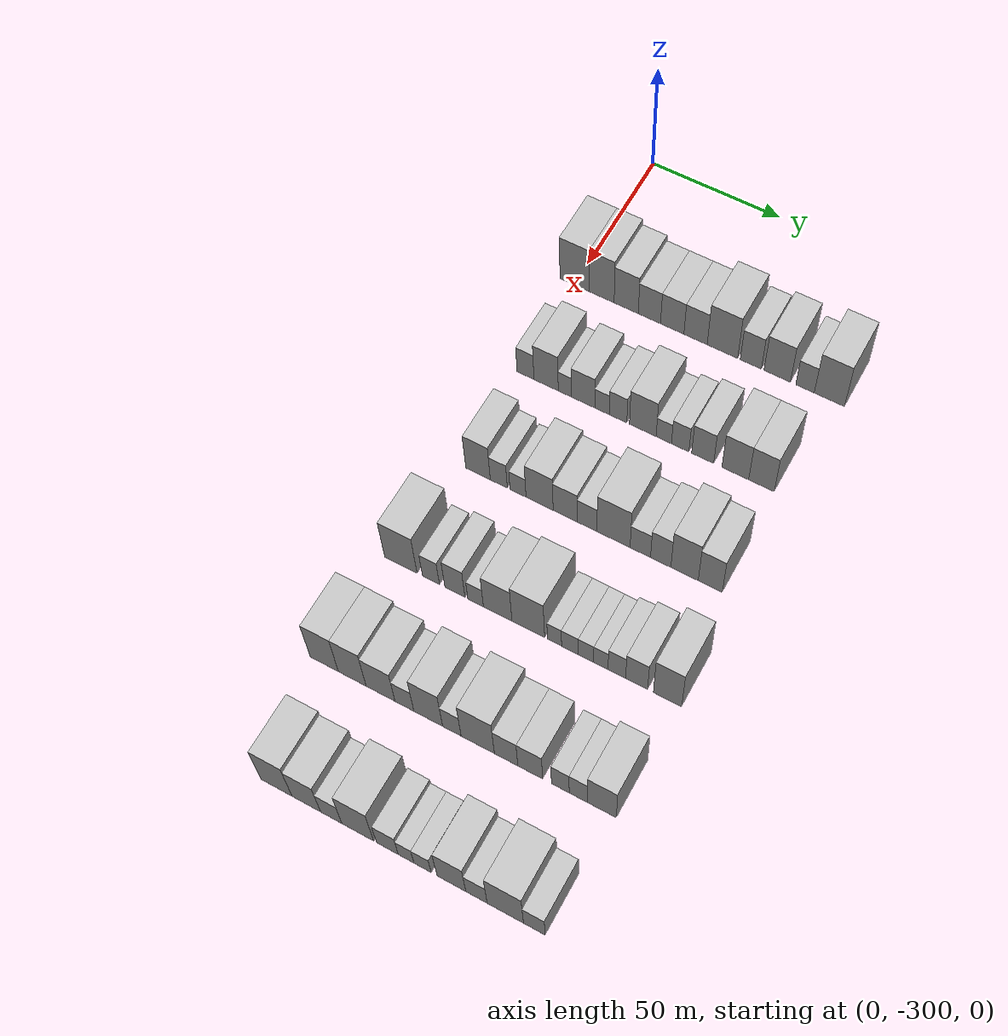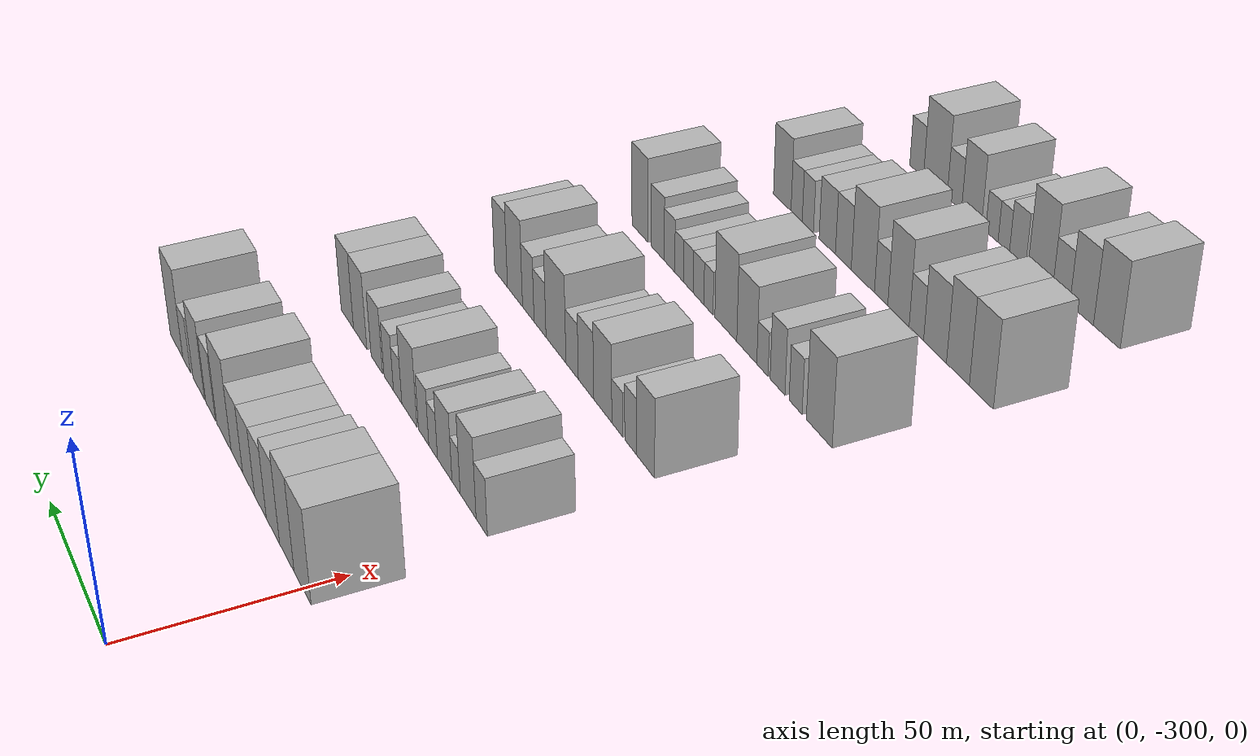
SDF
<sdf version="1.6">
 <world name="default">
  <model name="building_38">
   <static>1</static>
   <pose>50.0000 -299.7955 0 0.000000 0.000000 0.000000</pose>
   <link name="link">
    <pose>0 0 12.00 0 0 0</pose>
    <collision name="collision"><geometry><box><size>20.0000 11.3112 24.0000</size></box></geometry></collision>
    <visual name="visual">
     <cast_shadows>0</cast_shadows>
     <geometry><box><size>20.0000 11.3112 24.0000</size></box></geometry>
     <material>
      <script>
       <uri>model://HANNAS_wall/materials/scripts</uri>
       <uri>model://HANNAS_wall/materials/textures</uri>
       <name>vrc/HANNAS_wall</name>
      </script>
     </material>
    </visual>
   </link>
  </model>
  <model name="building_39">
   <static>1</static>
   <pose>50.0000 -289.2028 0 0.000000 0.000000 0.000000</pose>
   <link name="link">
    <pose>0 0 12.00 0 0 0</pose>
    <collision name="collision"><geometry><box><size>20.0000 9.8742 24.0000</size></box></geometry></collision>
    <visual name="visual">
     <cast_shadows>0</cast_shadows>
     <geometry><box><size>20.0000 9.8742 24.0000</size></box></geometry>
     <material>
      <script>
       <uri>model://HANNAS_wall/materials/scripts</uri>
       <uri>model://HANNAS_wall/materials/textures</uri>
       <name>vrc/HANNAS_wall</name>
      </script>
     </material>
    </visual>
   </link>
  </model>
  <model name="building_40">
   <static>1</static>
   <pose>50.0000 -279.5872 0 0.000000 0.000000 0.000000</pose>
   <link name="link">
    <pose>0 0 10.50 0 0 0</pose>
    <collision name="collision"><geometry><box><size>20.0000 9.3571 21.0000</size></box></geometry></collision>
    <visual name="visual">
     <cast_shadows>0</cast_shadows>
     <geometry><box><size>20.0000 9.3571 21.0000</size></box></geometry>
     <material>
      <script>
       <uri>model://HANNAS_wall/materials/scripts</uri>
       <uri>model://HANNAS_wall/materials/textures</uri>
       <name>vrc/HANNAS_wall</name>
      </script>
     </material>
    </visual>
   </link>
  </model>
  <model name="building_41">
   <static>1</static>
   <pose>50.0000 -270.6344 0 0.000000 0.000000 0.000000</pose>
   <link name="link">
    <pose>0 0 9.00 0 0 0</pose>
    <collision name="collision"><geometry><box><size>20.0000 8.5484 18.0000</size></box></geometry></collision>
    <visual name="visual">
     <cast_shadows>0</cast_shadows>
     <geometry><box><size>20.0000 8.5484 18.0000</size></box></geometry>
     <material>
      <script>
       <uri>model://HANNAS_wall/materials/scripts</uri>
       <uri>model://HANNAS_wall/materials/textures</uri>
       <name>vrc/HANNAS_wall</name>
      </script>
     </material>
    </visual>
   </link>
  </model>
  <model name="building_42">
   <static>1</static>
   <pose>50.0000 -261.8857 0 0.000000 0.000000 0.000000</pose>
   <link name="link">
    <pose>0 0 9.00 0 0 0</pose>
    <collision name="collision"><geometry><box><size>20.0000 8.9490 18.0000</size></box></geometry></collision>
    <visual name="visual">
     <cast_shadows>0</cast_shadows>
     <geometry><box><size>20.0000 8.9490 18.0000</size></box></geometry>
     <material>
      <script>
       <uri>model://HANNAS_wall/materials/scripts</uri>
       <uri>model://HANNAS_wall/materials/textures</uri>
       <name>vrc/HANNAS_wall</name>
      </script>
     </material>
    </visual>
   </link>
  </model>
  <model name="building_43">
   <static>1</static>
   <pose>50.0000 -252.9878 0 0.000000 0.000000 0.000000</pose>
   <link name="link">
    <pose>0 0 9.00 0 0 0</pose>
    <collision name="collision"><geometry><box><size>20.0000 8.8469 18.0000</size></box></geometry></collision>
    <visual name="visual">
     <cast_shadows>0</cast_shadows>
     <geometry><box><size>20.0000 8.8469 18.0000</size></box></geometry>
     <material>
      <script>
       <uri>model://HANNAS_wall/materials/scripts</uri>
       <uri>model://HANNAS_wall/materials/textures</uri>
       <name>vrc/HANNAS_wall</name>
      </script>
     </material>
    </visual>
   </link>
  </model>
  <model name="building_44">
   <static>1</static>
   <pose>50.0000 -242.8386 0 0.000000 0.000000 0.000000</pose>
   <link name="link">
    <pose>0 0 12.00 0 0 0</pose>
    <collision name="collision"><geometry><box><size>20.0000 11.4516 24.0000</size></box></geometry></collision>
    <visual name="visual">
     <cast_shadows>0</cast_shadows>
     <geometry><box><size>20.0000 11.4516 24.0000</size></box></geometry>
     <material>
      <script>
       <uri>model://HANNAS_wall/materials/scripts</uri>
       <uri>model://HANNAS_wall/materials/textures</uri>
       <name>vrc/HANNAS_wall</name>
      </script>
     </material>
    </visual>
   </link>
  </model>
  <model name="building_45">
   <static>1</static>
   <pose>50.0000 -232.1709 0 0.000000 0.000000 0.000000</pose>
   <link name="link">
    <pose>0 0 9.00 0 0 0</pose>
    <collision name="collision"><geometry><box><size>20.0000 7.8837 18.0000</size></box></geometry></collision>
    <visual name="visual">
     <cast_shadows>0</cast_shadows>
     <geometry><box><size>20.0000 7.8837 18.0000</size></box></geometry>
     <material>
      <script>
       <uri>model://HANNAS_wall/materials/scripts</uri>
       <uri>model://HANNAS_wall/materials/textures</uri>
       <name>vrc/HANNAS_wall</name>
      </script>
     </material>
    </visual>
   </link>
  </model>
  <model name="building_46">
   <static>1</static>
   <pose>50.0000 -222.3349 0 0.000000 0.000000 0.000000</pose>
   <link name="link">
    <pose>0 0 10.50 0 0 0</pose>
    <collision name="collision"><geometry><box><size>20.0000 9.7882 21.0000</size></box></geometry></collision>
    <visual name="visual">
     <cast_shadows>0</cast_shadows>
     <geometry><box><size>20.0000 9.7882 21.0000</size></box></geometry>
     <material>
      <script>
       <uri>model://HANNAS_wall/materials/scripts</uri>
       <uri>model://HANNAS_wall/materials/textures</uri>
       <name>vrc/HANNAS_wall</name>
      </script>
     </material>
    </visual>
   </link>
  </model>
  <model name="building_47">
   <static>1</static>
   <pose>50.0000 -212.0535 0 0.000000 0.000000 0.000000</pose>
   <link name="link">
    <pose>0 0 7.50 0 0 0</pose>
    <collision name="collision"><geometry><box><size>20.0000 6.7747 15.0000</size></box></geometry></collision>
    <visual name="visual">
     <cast_shadows>0</cast_shadows>
     <geometry><box><size>20.0000 6.7747 15.0000</size></box></geometry>
     <material>
      <script>
       <uri>model://HANNAS_wall/materials/scripts</uri>
       <uri>model://HANNAS_wall/materials/textures</uri>
       <name>vrc/HANNAS_wall</name>
      </script>
     </material>
    </visual>
   </link>
  </model>
  <model name="building_48">
   <static>1</static>
   <pose>50.0000 -203.1275 0 0.000000 0.000000 0.000000</pose>
   <link name="link">
    <pose>0 0 12.00 0 0 0</pose>
    <collision name="collision"><geometry><box><size>20.0000 11.0774 24.0000</size></box></geometry></collision>
    <visual name="visual">
     <cast_shadows>0</cast_shadows>
     <geometry><box><size>20.0000 11.0774 24.0000</size></box></geometry>
     <material>
      <script>
       <uri>model://HANNAS_wall/materials/scripts</uri>
       <uri>model://HANNAS_wall/materials/textures</uri>
       <name>vrc/HANNAS_wall</name>
      </script>
     </material>
    </visual>
   </link>
  </model>
  <model name="building_171">
   <static>1</static>
   <pose>90.0000 -296.6397 0 0.000000 0.000000 0.000000</pose>
   <link name="link">
    <pose>0 0 7.50 0 0 0</pose>
    <collision name="collision"><geometry><box><size>20.0000 6.4886 15.0000</size></box></geometry></collision>
    <visual name="visual">
     <cast_shadows>0</cast_shadows>
     <geometry><box><size>20.0000 6.4886 15.0000</size></box></geometry>
     <material>
      <script>
       <uri>model://HANNAS_wall/materials/scripts</uri>
       <uri>model://HANNAS_wall/materials/textures</uri>
       <name>vrc/HANNAS_wall</name>
      </script>
     </material>
    </visual>
   </link>
  </model>
  <model name="building_172">
   <static>1</static>
   <pose>90.0000 -288.7477 0 0.000000 0.000000 0.000000</pose>
   <link name="link">
    <pose>0 0 10.50 0 0 0</pose>
    <collision name="collision"><geometry><box><size>20.0000 9.2954 21.0000</size></box></geometry></collision>
    <visual name="visual">
     <cast_shadows>0</cast_shadows>
     <geometry><box><size>20.0000 9.2954 21.0000</size></box></geometry>
     <material>
      <script>
       <uri>model://HANNAS_wall/materials/scripts</uri>
       <uri>model://HANNAS_wall/materials/textures</uri>
       <name>vrc/HANNAS_wall</name>
      </script>
     </material>
    </visual>
   </link>
  </model>
  <model name="building_173">
   <static>1</static>
   <pose>90.0000 -281.6334 0 0.000000 0.000000 0.000000</pose>
   <link name="link">
    <pose>0 0 6.00 0 0 0</pose>
    <collision name="collision"><geometry><box><size>20.0000 4.9332 12.0000</size></box></geometry></collision>
    <visual name="visual">
     <cast_shadows>0</cast_shadows>
     <geometry><box><size>20.0000 4.9332 12.0000</size></box></geometry>
     <material>
      <script>
       <uri>model://HANNAS_wall/materials/scripts</uri>
       <uri>model://HANNAS_wall/materials/textures</uri>
       <name>vrc/HANNAS_wall</name>
      </script>
     </material>
    </visual>
   </link>
  </model>
  <model name="building_174">
   <static>1</static>
   <pose>90.0000 -274.7191 0 0.000000 0.000000 0.000000</pose>
   <link name="link">
    <pose>0 0 9.00 0 0 0</pose>
    <collision name="collision"><geometry><box><size>20.0000 8.8953 18.0000</size></box></geometry></collision>
    <visual name="visual">
     <cast_shadows>0</cast_shadows>
     <geometry><box><size>20.0000 8.8953 18.0000</size></box></geometry>
     <material>
      <script>
       <uri>model://HANNAS_wall/materials/scripts</uri>
       <uri>model://HANNAS_wall/materials/textures</uri>
       <name>vrc/HANNAS_wall</name>
      </script>
     </material>
    </visual>
   </link>
  </model>
  <model name="building_175">
   <static>1</static>
   <pose>90.0000 -267.5502 0 0.000000 0.000000 0.000000</pose>
   <link name="link">
    <pose>0 0 6.00 0 0 0</pose>
    <collision name="collision"><geometry><box><size>20.0000 5.4425 12.0000</size></box></geometry></collision>
    <visual name="visual">
     <cast_shadows>0</cast_shadows>
     <geometry><box><size>20.0000 5.4425 12.0000</size></box></geometry>
     <material>
      <script>
       <uri>model://HANNAS_wall/materials/scripts</uri>
       <uri>model://HANNAS_wall/materials/textures</uri>
       <name>vrc/HANNAS_wall</name>
      </script>
     </material>
    </visual>
   </link>
  </model>
  <model name="building_176">
   <static>1</static>
   <pose>90.0000 -261.5360 0 0.000000 0.000000 0.000000</pose>
   <link name="link">
    <pose>0 0 7.50 0 0 0</pose>
    <collision name="collision"><geometry><box><size>20.0000 6.5858 15.0000</size></box></geometry></collision>
    <visual name="visual">
     <cast_shadows>0</cast_shadows>
     <geometry><box><size>20.0000 6.5858 15.0000</size></box></geometry>
     <material>
      <script>
       <uri>model://HANNAS_wall/materials/scripts</uri>
       <uri>model://HANNAS_wall/materials/textures</uri>
       <name>vrc/HANNAS_wall</name>
      </script>
     </material>
    </visual>
   </link>
  </model>
  <model name="building_177">
   <static>1</static>
   <pose>90.0000 -252.2853 0 0.000000 0.000000 0.000000</pose>
   <link name="link">
    <pose>0 0 10.50 0 0 0</pose>
    <collision name="collision"><geometry><box><size>20.0000 9.9157 21.0000</size></box></geometry></collision>
    <visual name="visual">
     <cast_shadows>0</cast_shadows>
     <geometry><box><size>20.0000 9.9157 21.0000</size></box></geometry>
     <material>
      <script>
       <uri>model://HANNAS_wall/materials/scripts</uri>
       <uri>model://HANNAS_wall/materials/textures</uri>
       <name>vrc/HANNAS_wall</name>
      </script>
     </material>
    </visual>
   </link>
  </model>
  <model name="building_178">
   <static>1</static>
   <pose>90.0000 -244.5088 0 0.000000 0.000000 0.000000</pose>
   <link name="link">
    <pose>0 0 6.00 0 0 0</pose>
    <collision name="collision"><geometry><box><size>20.0000 5.6373 12.0000</size></box></geometry></collision>
    <visual name="visual">
     <cast_shadows>0</cast_shadows>
     <geometry><box><size>20.0000 5.6373 12.0000</size></box></geometry>
     <material>
      <script>
       <uri>model://HANNAS_wall/materials/scripts</uri>
       <uri>model://HANNAS_wall/materials/textures</uri>
       <name>vrc/HANNAS_wall</name>
      </script>
     </material>
    </visual>
   </link>
  </model>
  <model name="building_179">
   <static>1</static>
   <pose>90.0000 -238.4731 0 0.000000 0.000000 0.000000</pose>
   <link name="link">
    <pose>0 0 7.50 0 0 0</pose>
    <collision name="collision"><geometry><box><size>20.0000 6.4340 15.0000</size></box></geometry></collision>
    <visual name="visual">
     <cast_shadows>0</cast_shadows>
     <geometry><box><size>20.0000 6.4340 15.0000</size></box></geometry>
     <material>
      <script>
       <uri>model://HANNAS_wall/materials/scripts</uri>
       <uri>model://HANNAS_wall/materials/textures</uri>
       <name>vrc/HANNAS_wall</name>
      </script>
     </material>
    </visual>
   </link>
  </model>
  <model name="building_180">
   <static>1</static>
   <pose>90.0000 -230.2324 0 0.000000 0.000000 0.000000</pose>
   <link name="link">
    <pose>0 0 9.00 0 0 0</pose>
    <collision name="collision"><geometry><box><size>20.0000 8.0475 18.0000</size></box></geometry></collision>
    <visual name="visual">
     <cast_shadows>0</cast_shadows>
     <geometry><box><size>20.0000 8.0475 18.0000</size></box></geometry>
     <material>
      <script>
       <uri>model://HANNAS_wall/materials/scripts</uri>
       <uri>model://HANNAS_wall/materials/textures</uri>
       <name>vrc/HANNAS_wall</name>
      </script>
     </material>
    </visual>
   </link>
  </model>
  <model name="building_181">
   <static>1</static>
   <pose>90.0000 -218.3691 0 0.000000 0.000000 0.000000</pose>
   <link name="link">
    <pose>0 0 10.50 0 0 0</pose>
    <collision name="collision"><geometry><box><size>20.0000 9.6792 21.0000</size></box></geometry></collision>
    <visual name="visual">
     <cast_shadows>0</cast_shadows>
     <geometry><box><size>20.0000 9.6792 21.0000</size></box></geometry>
     <material>
      <script>
       <uri>model://HANNAS_wall/materials/scripts</uri>
       <uri>model://HANNAS_wall/materials/textures</uri>
       <name>vrc/HANNAS_wall</name>
      </script>
     </material>
    </visual>
   </link>
  </model>
  <model name="building_182">
   <static>1</static>
   <pose>90.0000 -208.9331 0 0.000000 0.000000 0.000000</pose>
   <link name="link">
    <pose>0 0 10.50 0 0 0</pose>
    <collision name="collision"><geometry><box><size>20.0000 9.1927 21.0000</size></box></geometry></collision>
    <visual name="visual">
     <cast_shadows>0</cast_shadows>
     <geometry><box><size>20.0000 9.1927 21.0000</size></box></geometry>
     <material>
      <script>
       <uri>model://HANNAS_wall/materials/scripts</uri>
       <uri>model://HANNAS_wall/materials/textures</uri>
       <name>vrc/HANNAS_wall</name>
      </script>
     </material>
    </visual>
   </link>
  </model>
  <model name="building_310">
   <static>1</static>
   <pose>130.0000 -291.8263 0 0.000000 0.000000 0.000000</pose>
   <link name="link">
    <pose>0 0 10.50 0 0 0</pose>
    <collision name="collision"><geometry><box><size>20.0000 9.1934 21.0000</size></box></geometry></collision>
    <visual name="visual">
     <cast_shadows>0</cast_shadows>
     <geometry><box><size>20.0000 9.1934 21.0000</size></box></geometry>
     <material>
      <script>
       <uri>model://HANNAS_wall/materials/scripts</uri>
       <uri>model://HANNAS_wall/materials/textures</uri>
       <name>vrc/HANNAS_wall</name>
      </script>
     </material>
    </visual>
   </link>
  </model>
  <model name="building_311">
   <static>1</static>
   <pose>130.0000 -284.0512 0 0.000000 0.000000 0.000000</pose>
   <link name="link">
    <pose>0 0 7.50 0 0 0</pose>
    <collision name="collision"><geometry><box><size>20.0000 6.3570 15.0000</size></box></geometry></collision>
    <visual name="visual">
     <cast_shadows>0</cast_shadows>
     <geometry><box><size>20.0000 6.3570 15.0000</size></box></geometry>
     <material>
      <script>
       <uri>model://HANNAS_wall/materials/scripts</uri>
       <uri>model://HANNAS_wall/materials/textures</uri>
       <name>vrc/HANNAS_wall</name>
      </script>
     </material>
    </visual>
   </link>
  </model>
  <model name="building_312">
   <static>1</static>
   <pose>130.0000 -276.8973 0 0.000000 0.000000 0.000000</pose>
   <link name="link">
    <pose>0 0 6.00 0 0 0</pose>
    <collision name="collision"><geometry><box><size>20.0000 5.9509 12.0000</size></box></geometry></collision>
    <visual name="visual">
     <cast_shadows>0</cast_shadows>
     <geometry><box><size>20.0000 5.9509 12.0000</size></box></geometry>
     <material>
      <script>
       <uri>model://HANNAS_wall/materials/scripts</uri>
       <uri>model://HANNAS_wall/materials/textures</uri>
       <name>vrc/HANNAS_wall</name>
      </script>
     </material>
    </visual>
   </link>
  </model>
  <model name="building_313">
   <static>1</static>
   <pose>130.0000 -268.9173 0 0.000000 0.000000 0.000000</pose>
   <link name="link">
    <pose>0 0 10.50 0 0 0</pose>
    <collision name="collision"><geometry><box><size>20.0000 10.0091 21.0000</size></box></geometry></collision>
    <visual name="visual">
     <cast_shadows>0</cast_shadows>
     <geometry><box><size>20.0000 10.0091 21.0000</size></box></geometry>
     <material>
      <script>
       <uri>model://HANNAS_wall/materials/scripts</uri>
       <uri>model://HANNAS_wall/materials/textures</uri>
       <name>vrc/HANNAS_wall</name>
      </script>
     </material>
    </visual>
   </link>
  </model>
  <model name="building_314">
   <static>1</static>
   <pose>130.0000 -259.5191 0 0.000000 0.000000 0.000000</pose>
   <link name="link">
    <pose>0 0 9.00 0 0 0</pose>
    <collision name="collision"><geometry><box><size>20.0000 8.7871 18.0000</size></box></geometry></collision>
    <visual name="visual">
     <cast_shadows>0</cast_shadows>
     <geometry><box><size>20.0000 8.7871 18.0000</size></box></geometry>
     <material>
      <script>
       <uri>model://HANNAS_wall/materials/scripts</uri>
       <uri>model://HANNAS_wall/materials/textures</uri>
       <name>vrc/HANNAS_wall</name>
      </script>
     </material>
    </visual>
   </link>
  </model>
  <model name="building_315">
   <static>1</static>
   <pose>130.0000 -251.5272 0 0.000000 0.000000 0.000000</pose>
   <link name="link">
    <pose>0 0 7.50 0 0 0</pose>
    <collision name="collision"><geometry><box><size>20.0000 7.1968 15.0000</size></box></geometry></collision>
    <visual name="visual">
     <cast_shadows>0</cast_shadows>
     <geometry><box><size>20.0000 7.1968 15.0000</size></box></geometry>
     <material>
      <script>
       <uri>model://HANNAS_wall/materials/scripts</uri>
       <uri>model://HANNAS_wall/materials/textures</uri>
       <name>vrc/HANNAS_wall</name>
      </script>
     </material>
    </visual>
   </link>
  </model>
  <model name="building_316">
   <static>1</static>
   <pose>130.0000 -241.9499 0 0.000000 0.000000 0.000000</pose>
   <link name="link">
    <pose>0 0 12.00 0 0 0</pose>
    <collision name="collision"><geometry><box><size>20.0000 11.9578 24.0000</size></box></geometry></collision>
    <visual name="visual">
     <cast_shadows>0</cast_shadows>
     <geometry><box><size>20.0000 11.9578 24.0000</size></box></geometry>
     <material>
      <script>
       <uri>model://HANNAS_wall/materials/scripts</uri>
       <uri>model://HANNAS_wall/materials/textures</uri>
       <name>vrc/HANNAS_wall</name>
      </script>
     </material>
    </visual>
   </link>
  </model>
  <model name="building_317">
   <static>1</static>
   <pose>130.0000 -232.3136 0 0.000000 0.000000 0.000000</pose>
   <link name="link">
    <pose>0 0 7.50 0 0 0</pose>
    <collision name="collision"><geometry><box><size>20.0000 7.3148 15.0000</size></box></geometry></collision>
    <visual name="visual">
     <cast_shadows>0</cast_shadows>
     <geometry><box><size>20.0000 7.3148 15.0000</size></box></geometry>
     <material>
      <script>
       <uri>model://HANNAS_wall/materials/scripts</uri>
       <uri>model://HANNAS_wall/materials/textures</uri>
       <name>vrc/HANNAS_wall</name>
      </script>
     </material>
    </visual>
   </link>
  </model>
  <model name="building_318">
   <static>1</static>
   <pose>130.0000 -225.0317 0 0.000000 0.000000 0.000000</pose>
   <link name="link">
    <pose>0 0 9.00 0 0 0</pose>
    <collision name="collision"><geometry><box><size>20.0000 7.2490 18.0000</size></box></geometry></collision>
    <visual name="visual">
     <cast_shadows>0</cast_shadows>
     <geometry><box><size>20.0000 7.2490 18.0000</size></box></geometry>
     <material>
      <script>
       <uri>model://HANNAS_wall/materials/scripts</uri>
       <uri>model://HANNAS_wall/materials/textures</uri>
       <name>vrc/HANNAS_wall</name>
      </script>
     </material>
    </visual>
   </link>
  </model>
  <model name="building_319">
   <static>1</static>
   <pose>130.0000 -216.5726 0 0.000000 0.000000 0.000000</pose>
   <link name="link">
    <pose>0 0 12.00 0 0 0</pose>
    <collision name="collision"><geometry><box><size>20.0000 9.6694 24.0000</size></box></geometry></collision>
    <visual name="visual">
     <cast_shadows>0</cast_shadows>
     <geometry><box><size>20.0000 9.6694 24.0000</size></box></geometry>
     <material>
      <script>
       <uri>model://HANNAS_wall/materials/scripts</uri>
       <uri>model://HANNAS_wall/materials/textures</uri>
       <name>vrc/HANNAS_wall</name>
      </script>
     </material>
    </visual>
   </link>
  </model>
  <model name="building_320">
   <static>1</static>
   <pose>130.0000 -207.5158 0 0.000000 0.000000 0.000000</pose>
   <link name="link">
    <pose>0 0 10.50 0 0 0</pose>
    <collision name="collision"><geometry><box><size>20.0000 8.4441 21.0000</size></box></geometry></collision>
    <visual name="visual">
     <cast_shadows>0</cast_shadows>
     <geometry><box><size>20.0000 8.4441 21.0000</size></box></geometry>
     <material>
      <script>
       <uri>model://HANNAS_wall/materials/scripts</uri>
       <uri>model://HANNAS_wall/materials/textures</uri>
       <name>vrc/HANNAS_wall</name>
      </script>
     </material>
    </visual>
   </link>
  </model>
  <model name="building_453">
   <static>1</static>
   <pose>170.0000 -296.8375 0 0.000000 0.000000 0.000000</pose>
   <link name="link">
    <pose>0 0 12.00 0 0 0</pose>
    <collision name="collision"><geometry><box><size>20.0000 11.9736 24.0000</size></box></geometry></collision>
    <visual name="visual">
     <cast_shadows>0</cast_shadows>
     <geometry><box><size>20.0000 11.9736 24.0000</size></box></geometry>
     <material>
      <script>
       <uri>model://HANNAS_wall/materials/scripts</uri>
       <uri>model://HANNAS_wall/materials/textures</uri>
       <name>vrc/HANNAS_wall</name>
      </script>
     </material>
    </visual>
   </link>
  </model>
  <model name="building_454">
   <static>1</static>
   <pose>170.0000 -285.7492 0 0.000000 0.000000 0.000000</pose>
   <link name="link">
    <pose>0 0 7.50 0 0 0</pose>
    <collision name="collision"><geometry><box><size>20.0000 6.2030 15.0000</size></box></geometry></collision>
    <visual name="visual">
     <cast_shadows>0</cast_shadows>
     <geometry><box><size>20.0000 6.2030 15.0000</size></box></geometry>
     <material>
      <script>
       <uri>model://HANNAS_wall/materials/scripts</uri>
       <uri>model://HANNAS_wall/materials/textures</uri>
       <name>vrc/HANNAS_wall</name>
      </script>
     </material>
    </visual>
   </link>
  </model>
  <model name="building_455">
   <static>1</static>
   <pose>170.0000 -276.9927 0 0.000000 0.000000 0.000000</pose>
   <link name="link">
    <pose>0 0 9.00 0 0 0</pose>
    <collision name="collision"><geometry><box><size>20.0000 7.3099 18.0000</size></box></geometry></collision>
    <visual name="visual">
     <cast_shadows>0</cast_shadows>
     <geometry><box><size>20.0000 7.3099 18.0000</size></box></geometry>
     <material>
      <script>
       <uri>model://HANNAS_wall/materials/scripts</uri>
       <uri>model://HANNAS_wall/materials/textures</uri>
       <name>vrc/HANNAS_wall</name>
      </script>
     </material>
    </visual>
   </link>
  </model>
  <model name="building_456">
   <static>1</static>
   <pose>170.0000 -269.5164 0 0.000000 0.000000 0.000000</pose>
   <link name="link">
    <pose>0 0 6.00 0 0 0</pose>
    <collision name="collision"><geometry><box><size>20.0000 5.6427 12.0000</size></box></geometry></collision>
    <visual name="visual">
     <cast_shadows>0</cast_shadows>
     <geometry><box><size>20.0000 5.6427 12.0000</size></box></geometry>
     <material>
      <script>
       <uri>model://HANNAS_wall/materials/scripts</uri>
       <uri>model://HANNAS_wall/materials/textures</uri>
       <name>vrc/HANNAS_wall</name>
      </script>
     </material>
    </visual>
   </link>
  </model>
  <model name="building_457">
   <static>1</static>
   <pose>170.0000 -261.5640 0 0.000000 0.000000 0.000000</pose>
   <link name="link">
    <pose>0 0 10.50 0 0 0</pose>
    <collision name="collision"><geometry><box><size>20.0000 10.2622 21.0000</size></box></geometry></collision>
    <visual name="visual">
     <cast_shadows>0</cast_shadows>
     <geometry><box><size>20.0000 10.2622 21.0000</size></box></geometry>
     <material>
      <script>
       <uri>model://HANNAS_wall/materials/scripts</uri>
       <uri>model://HANNAS_wall/materials/textures</uri>
       <name>vrc/HANNAS_wall</name>
      </script>
     </material>
    </visual>
   </link>
  </model>
  <model name="building_458">
   <static>1</static>
   <pose>170.0000 -250.6184 0 0.000000 0.000000 0.000000</pose>
   <link name="link">
    <pose>0 0 12.00 0 0 0</pose>
    <collision name="collision"><geometry><box><size>20.0000 11.6290 24.0000</size></box></geometry></collision>
    <visual name="visual">
     <cast_shadows>0</cast_shadows>
     <geometry><box><size>20.0000 11.6290 24.0000</size></box></geometry>
     <material>
      <script>
       <uri>model://HANNAS_wall/materials/scripts</uri>
       <uri>model://HANNAS_wall/materials/textures</uri>
       <name>vrc/HANNAS_wall</name>
      </script>
     </material>
    </visual>
   </link>
  </model>
  <model name="building_459">
   <static>1</static>
   <pose>170.0000 -241.3106 0 0.000000 0.000000 0.000000</pose>
   <link name="link">
    <pose>0 0 6.00 0 0 0</pose>
    <collision name="collision"><geometry><box><size>20.0000 4.9866 12.0000</size></box></geometry></collision>
    <visual name="visual">
     <cast_shadows>0</cast_shadows>
     <geometry><box><size>20.0000 4.9866 12.0000</size></box></geometry>
     <material>
      <script>
       <uri>model://HANNAS_wall/materials/scripts</uri>
       <uri>model://HANNAS_wall/materials/textures</uri>
       <name>vrc/HANNAS_wall</name>
      </script>
     </material>
    </visual>
   </link>
  </model>
  <model name="building_460">
   <static>1</static>
   <pose>170.0000 -235.8862 0 0.000000 0.000000 0.000000</pose>
   <link name="link">
    <pose>0 0 6.00 0 0 0</pose>
    <collision name="collision"><geometry><box><size>20.0000 5.8621 12.0000</size></box></geometry></collision>
    <visual name="visual">
     <cast_shadows>0</cast_shadows>
     <geometry><box><size>20.0000 5.8621 12.0000</size></box></geometry>
     <material>
      <script>
       <uri>model://HANNAS_wall/materials/scripts</uri>
       <uri>model://HANNAS_wall/materials/textures</uri>
       <name>vrc/HANNAS_wall</name>
      </script>
     </material>
    </visual>
   </link>
  </model>
  <model name="building_461">
   <static>1</static>
   <pose>170.0000 -230.2600 0 0.000000 0.000000 0.000000</pose>
   <link name="link">
    <pose>0 0 6.00 0 0 0</pose>
    <collision name="collision"><geometry><box><size>20.0000 5.3904 12.0000</size></box></geometry></collision>
    <visual name="visual">
     <cast_shadows>0</cast_shadows>
     <geometry><box><size>20.0000 5.3904 12.0000</size></box></geometry>
     <material>
      <script>
       <uri>model://HANNAS_wall/materials/scripts</uri>
       <uri>model://HANNAS_wall/materials/textures</uri>
       <name>vrc/HANNAS_wall</name>
      </script>
     </material>
    </visual>
   </link>
  </model>
  <model name="building_462">
   <static>1</static>
   <pose>170.0000 -225.0630 0 0.000000 0.000000 0.000000</pose>
   <link name="link">
    <pose>0 0 6.00 0 0 0</pose>
    <collision name="collision"><geometry><box><size>20.0000 5.0035 12.0000</size></box></geometry></collision>
    <visual name="visual">
     <cast_shadows>0</cast_shadows>
     <geometry><box><size>20.0000 5.0035 12.0000</size></box></geometry>
     <material>
      <script>
       <uri>model://HANNAS_wall/materials/scripts</uri>
       <uri>model://HANNAS_wall/materials/textures</uri>
       <name>vrc/HANNAS_wall</name>
      </script>
     </material>
    </visual>
   </link>
  </model>
  <model name="building_463">
   <static>1</static>
   <pose>170.0000 -219.5139 0 0.000000 0.000000 0.000000</pose>
   <link name="link">
    <pose>0 0 7.50 0 0 0</pose>
    <collision name="collision"><geometry><box><size>20.0000 6.0948 15.0000</size></box></geometry></collision>
    <visual name="visual">
     <cast_shadows>0</cast_shadows>
     <geometry><box><size>20.0000 6.0948 15.0000</size></box></geometry>
     <material>
      <script>
       <uri>model://HANNAS_wall/materials/scripts</uri>
       <uri>model://HANNAS_wall/materials/textures</uri>
       <name>vrc/HANNAS_wall</name>
      </script>
     </material>
    </visual>
   </link>
  </model>
  <model name="building_464">
   <static>1</static>
   <pose>170.0000 -212.6825 0 0.000000 0.000000 0.000000</pose>
   <link name="link">
    <pose>0 0 9.00 0 0 0</pose>
    <collision name="collision"><geometry><box><size>20.0000 7.5679 18.0000</size></box></geometry></collision>
    <visual name="visual">
     <cast_shadows>0</cast_shadows>
     <geometry><box><size>20.0000 7.5679 18.0000</size></box></geometry>
     <material>
      <script>
       <uri>model://HANNAS_wall/materials/scripts</uri>
       <uri>model://HANNAS_wall/materials/textures</uri>
       <name>vrc/HANNAS_wall</name>
      </script>
     </material>
    </visual>
   </link>
  </model>
  <model name="building_465">
   <static>1</static>
   <pose>170.0000 -202.0722 0 0.000000 0.000000 0.000000</pose>
   <link name="link">
    <pose>0 0 12.00 0 0 0</pose>
    <collision name="collision"><geometry><box><size>20.0000 9.6528 24.0000</size></box></geometry></collision>
    <visual name="visual">
     <cast_shadows>0</cast_shadows>
     <geometry><box><size>20.0000 9.6528 24.0000</size></box></geometry>
     <material>
      <script>
       <uri>model://HANNAS_wall/materials/scripts</uri>
       <uri>model://HANNAS_wall/materials/textures</uri>
       <name>vrc/HANNAS_wall</name>
      </script>
     </material>
    </visual>
   </link>
  </model>
  <model name="building_596">
   <static>1</static>
   <pose>210.0000 -300.0054 0 0.000000 0.000000 0.000000</pose>
   <link name="link">
    <pose>0 0 12.00 0 0 0</pose>
    <collision name="collision"><geometry><box><size>20.0000 10.2129 24.0000</size></box></geometry></collision>
    <visual name="visual">
     <cast_shadows>0</cast_shadows>
     <geometry><box><size>20.0000 10.2129 24.0000</size></box></geometry>
     <material>
      <script>
       <uri>model://HANNAS_wall/materials/scripts</uri>
       <uri>model://HANNAS_wall/materials/textures</uri>
       <name>vrc/HANNAS_wall</name>
      </script>
     </material>
    </visual>
   </link>
  </model>
  <model name="building_597">
   <static>1</static>
   <pose>210.0000 -289.8914 0 0.000000 0.000000 0.000000</pose>
   <link name="link">
    <pose>0 0 12.00 0 0 0</pose>
    <collision name="collision"><geometry><box><size>20.0000 10.0150 24.0000</size></box></geometry></collision>
    <visual name="visual">
     <cast_shadows>0</cast_shadows>
     <geometry><box><size>20.0000 10.0150 24.0000</size></box></geometry>
     <material>
      <script>
       <uri>model://HANNAS_wall/materials/scripts</uri>
       <uri>model://HANNAS_wall/materials/textures</uri>
       <name>vrc/HANNAS_wall</name>
      </script>
     </material>
    </visual>
   </link>
  </model>
  <model name="building_598">
   <static>1</static>
   <pose>210.0000 -279.7288 0 0.000000 0.000000 0.000000</pose>
   <link name="link">
    <pose>0 0 10.50 0 0 0</pose>
    <collision name="collision"><geometry><box><size>20.0000 10.3103 21.0000</size></box></geometry></collision>
    <visual name="visual">
     <cast_shadows>0</cast_shadows>
     <geometry><box><size>20.0000 10.3103 21.0000</size></box></geometry>
     <material>
      <script>
       <uri>model://HANNAS_wall/materials/scripts</uri>
       <uri>model://HANNAS_wall/materials/textures</uri>
       <name>vrc/HANNAS_wall</name>
      </script>
     </material>
    </visual>
   </link>
  </model>
  <model name="building_599">
   <static>1</static>
   <pose>210.0000 -271.2295 0 0.000000 0.000000 0.000000</pose>
   <link name="link">
    <pose>0 0 7.50 0 0 0</pose>
    <collision name="collision"><geometry><box><size>20.0000 6.6883 15.0000</size></box></geometry></collision>
    <visual name="visual">
     <cast_shadows>0</cast_shadows>
     <geometry><box><size>20.0000 6.6883 15.0000</size></box></geometry>
     <material>
      <script>
       <uri>model://HANNAS_wall/materials/scripts</uri>
       <uri>model://HANNAS_wall/materials/textures</uri>
       <name>vrc/HANNAS_wall</name>
      </script>
     </material>
    </visual>
   </link>
  </model>
  <model name="building_600">
   <static>1</static>
   <pose>210.0000 -262.8394 0 0.000000 0.000000 0.000000</pose>
   <link name="link">
    <pose>0 0 12.00 0 0 0</pose>
    <collision name="collision"><geometry><box><size>20.0000 10.0920 24.0000</size></box></geometry></collision>
    <visual name="visual">
     <cast_shadows>0</cast_shadows>
     <geometry><box><size>20.0000 10.0920 24.0000</size></box></geometry>
     <material>
      <script>
       <uri>model://HANNAS_wall/materials/scripts</uri>
       <uri>model://HANNAS_wall/materials/textures</uri>
       <name>vrc/HANNAS_wall</name>
      </script>
     </material>
    </visual>
   </link>
  </model>
  <model name="building_601">
   <static>1</static>
   <pose>210.0000 -254.5598 0 0.000000 0.000000 0.000000</pose>
   <link name="link">
    <pose>0 0 7.50 0 0 0</pose>
    <collision name="collision"><geometry><box><size>20.0000 6.4672 15.0000</size></box></geometry></collision>
    <visual name="visual">
     <cast_shadows>0</cast_shadows>
     <geometry><box><size>20.0000 6.4672 15.0000</size></box></geometry>
     <material>
      <script>
       <uri>model://HANNAS_wall/materials/scripts</uri>
       <uri>model://HANNAS_wall/materials/textures</uri>
       <name>vrc/HANNAS_wall</name>
      </script>
     </material>
    </visual>
   </link>
  </model>
  <model name="building_602">
   <static>1</static>
   <pose>210.0000 -245.5460 0 0.000000 0.000000 0.000000</pose>
   <link name="link">
    <pose>0 0 12.00 0 0 0</pose>
    <collision name="collision"><geometry><box><size>20.0000 11.5604 24.0000</size></box></geometry></collision>
    <visual name="visual">
     <cast_shadows>0</cast_shadows>
     <geometry><box><size>20.0000 11.5604 24.0000</size></box></geometry>
     <material>
      <script>
       <uri>model://HANNAS_wall/materials/scripts</uri>
       <uri>model://HANNAS_wall/materials/textures</uri>
       <name>vrc/HANNAS_wall</name>
      </script>
     </material>
    </visual>
   </link>
  </model>
  <model name="building_603">
   <static>1</static>
   <pose>210.0000 -235.7384 0 0.000000 0.000000 0.000000</pose>
   <link name="link">
    <pose>0 0 9.00 0 0 0</pose>
    <collision name="collision"><geometry><box><size>20.0000 8.0548 18.0000</size></box></geometry></collision>
    <visual name="visual">
     <cast_shadows>0</cast_shadows>
     <geometry><box><size>20.0000 8.0548 18.0000</size></box></geometry>
     <material>
      <script>
       <uri>model://HANNAS_wall/materials/scripts</uri>
       <uri>model://HANNAS_wall/materials/textures</uri>
       <name>vrc/HANNAS_wall</name>
      </script>
     </material>
    </visual>
   </link>
  </model>
  <model name="building_604">
   <static>1</static>
   <pose>210.0000 -227.4717 0 0.000000 0.000000 0.000000</pose>
   <link name="link">
    <pose>0 0 9.00 0 0 0</pose>
    <collision name="collision"><geometry><box><size>20.0000 8.4785 18.0000</size></box></geometry></collision>
    <visual name="visual">
     <cast_shadows>0</cast_shadows>
     <geometry><box><size>20.0000 8.4785 18.0000</size></box></geometry>
     <material>
      <script>
       <uri>model://HANNAS_wall/materials/scripts</uri>
       <uri>model://HANNAS_wall/materials/textures</uri>
       <name>vrc/HANNAS_wall</name>
      </script>
     </material>
    </visual>
   </link>
  </model>
  <model name="building_605">
   <static>1</static>
   <pose>210.0000 -217.2294 0 0.000000 0.000000 0.000000</pose>
   <link name="link">
    <pose>0 0 7.50 0 0 0</pose>
    <collision name="collision"><geometry><box><size>20.0000 6.0061 15.0000</size></box></geometry></collision>
    <visual name="visual">
     <cast_shadows>0</cast_shadows>
     <geometry><box><size>20.0000 6.0061 15.0000</size></box></geometry>
     <material>
      <script>
       <uri>model://HANNAS_wall/materials/scripts</uri>
       <uri>model://HANNAS_wall/materials/textures</uri>
       <name>vrc/HANNAS_wall</name>
      </script>
     </material>
    </visual>
   </link>
  </model>
  <model name="building_606">
   <static>1</static>
   <pose>210.0000 -211.1945 0 0.000000 0.000000 0.000000</pose>
   <link name="link">
    <pose>0 0 7.50 0 0 0</pose>
    <collision name="collision"><geometry><box><size>20.0000 6.0637 15.0000</size></box></geometry></collision>
    <visual name="visual">
     <cast_shadows>0</cast_shadows>
     <geometry><box><size>20.0000 6.0637 15.0000</size></box></geometry>
     <material>
      <script>
       <uri>model://HANNAS_wall/materials/scripts</uri>
       <uri>model://HANNAS_wall/materials/textures</uri>
       <name>vrc/HANNAS_wall</name>
      </script>
     </material>
    </visual>
   </link>
  </model>
  <model name="building_607">
   <static>1</static>
   <pose>210.0000 -203.2931 0 0.000000 0.000000 0.000000</pose>
   <link name="link">
    <pose>0 0 10.50 0 0 0</pose>
    <collision name="collision"><geometry><box><size>20.0000 9.7390 21.0000</size></box></geometry></collision>
    <visual name="visual">
     <cast_shadows>0</cast_shadows>
     <geometry><box><size>20.0000 9.7390 21.0000</size></box></geometry>
     <material>
      <script>
       <uri>model://HANNAS_wall/materials/scripts</uri>
       <uri>model://HANNAS_wall/materials/textures</uri>
       <name>vrc/HANNAS_wall</name>
      </script>
     </material>
    </visual>
   </link>
  </model>
  <model name="building_741">
   <static>1</static>
   <pose>250.0000 -291.2969 0 0.000000 0.000000 0.000000</pose>
   <link name="link">
    <pose>0 0 12.00 0 0 0</pose>
    <collision name="collision"><geometry><box><size>20.0000 10.9846 24.0000</size></box></geometry></collision>
    <visual name="visual">
     <cast_shadows>0</cast_shadows>
     <geometry><box><size>20.0000 10.9846 24.0000</size></box></geometry>
     <material>
      <script>
       <uri>model://HANNAS_wall/materials/scripts</uri>
       <uri>model://HANNAS_wall/materials/textures</uri>
       <name>vrc/HANNAS_wall</name>
      </script>
     </material>
    </visual>
   </link>
  </model>
  <model name="building_742">
   <static>1</static>
   <pose>250.0000 -280.8016 0 0.000000 0.000000 0.000000</pose>
   <link name="link">
    <pose>0 0 10.50 0 0 0</pose>
    <collision name="collision"><geometry><box><size>20.0000 10.0061 21.0000</size></box></geometry></collision>
    <visual name="visual">
     <cast_shadows>0</cast_shadows>
     <geometry><box><size>20.0000 10.0061 21.0000</size></box></geometry>
     <material>
      <script>
       <uri>model://HANNAS_wall/materials/scripts</uri>
       <uri>model://HANNAS_wall/materials/textures</uri>
       <name>vrc/HANNAS_wall</name>
      </script>
     </material>
    </visual>
   </link>
  </model>
  <model name="building_743">
   <static>1</static>
   <pose>250.0000 -272.0966 0 0.000000 0.000000 0.000000</pose>
   <link name="link">
    <pose>0 0 7.50 0 0 0</pose>
    <collision name="collision"><geometry><box><size>20.0000 7.4040 15.0000</size></box></geometry></collision>
    <visual name="visual">
     <cast_shadows>0</cast_shadows>
     <geometry><box><size>20.0000 7.4040 15.0000</size></box></geometry>
     <material>
      <script>
       <uri>model://HANNAS_wall/materials/scripts</uri>
       <uri>model://HANNAS_wall/materials/textures</uri>
       <name>vrc/HANNAS_wall</name>
      </script>
     </material>
    </visual>
   </link>
  </model>
  <model name="building_744">
   <static>1</static>
   <pose>250.0000 -262.9175 0 0.000000 0.000000 0.000000</pose>
   <link name="link">
    <pose>0 0 12.00 0 0 0</pose>
    <collision name="collision"><geometry><box><size>20.0000 10.9541 24.0000</size></box></geometry></collision>
    <visual name="visual">
     <cast_shadows>0</cast_shadows>
     <geometry><box><size>20.0000 10.9541 24.0000</size></box></geometry>
     <material>
      <script>
       <uri>model://HANNAS_wall/materials/scripts</uri>
       <uri>model://HANNAS_wall/materials/textures</uri>
       <name>vrc/HANNAS_wall</name>
      </script>
     </material>
    </visual>
   </link>
  </model>
  <model name="building_745">
   <static>1</static>
   <pose>250.0000 -252.7453 0 0.000000 0.000000 0.000000</pose>
   <link name="link">
    <pose>0 0 7.50 0 0 0</pose>
    <collision name="collision"><geometry><box><size>20.0000 7.3904 15.0000</size></box></geometry></collision>
    <visual name="visual">
     <cast_shadows>0</cast_shadows>
     <geometry><box><size>20.0000 7.3904 15.0000</size></box></geometry>
     <material>
      <script>
       <uri>model://HANNAS_wall/materials/scripts</uri>
       <uri>model://HANNAS_wall/materials/textures</uri>
       <name>vrc/HANNAS_wall</name>
      </script>
     </material>
    </visual>
   </link>
  </model>
  <model name="building_746">
   <static>1</static>
   <pose>250.0000 -246.3957 0 0.000000 0.000000 0.000000</pose>
   <link name="link">
    <pose>0 0 6.00 0 0 0</pose>
    <collision name="collision"><geometry><box><size>20.0000 5.3088 12.0000</size></box></geometry></collision>
    <visual name="visual">
     <cast_shadows>0</cast_shadows>
     <geometry><box><size>20.0000 5.3088 12.0000</size></box></geometry>
     <material>
      <script>
       <uri>model://HANNAS_wall/materials/scripts</uri>
       <uri>model://HANNAS_wall/materials/textures</uri>
       <name>vrc/HANNAS_wall</name>
      </script>
     </material>
    </visual>
   </link>
  </model>
  <model name="building_747">
   <static>1</static>
   <pose>250.0000 -240.8217 0 0.000000 0.000000 0.000000</pose>
   <link name="link">
    <pose>0 0 6.00 0 0 0</pose>
    <collision name="collision"><geometry><box><size>20.0000 5.8391 12.0000</size></box></geometry></collision>
    <visual name="visual">
     <cast_shadows>0</cast_shadows>
     <geometry><box><size>20.0000 5.8391 12.0000</size></box></geometry>
     <material>
      <script>
       <uri>model://HANNAS_wall/materials/scripts</uri>
       <uri>model://HANNAS_wall/materials/textures</uri>
       <name>vrc/HANNAS_wall</name>
      </script>
     </material>
    </visual>
   </link>
  </model>
  <model name="building_748">
   <static>1</static>
   <pose>250.0000 -231.1050 0 0.000000 0.000000 0.000000</pose>
   <link name="link">
    <pose>0 0 10.50 0 0 0</pose>
    <collision name="collision"><geometry><box><size>20.0000 9.5943 21.0000</size></box></geometry></collision>
    <visual name="visual">
     <cast_shadows>0</cast_shadows>
     <geometry><box><size>20.0000 9.5943 21.0000</size></box></geometry>
     <material>
      <script>
       <uri>model://HANNAS_wall/materials/scripts</uri>
       <uri>model://HANNAS_wall/materials/textures</uri>
       <name>vrc/HANNAS_wall</name>
      </script>
     </material>
    </visual>
   </link>
  </model>
  <model name="building_749">
   <static>1</static>
   <pose>250.0000 -222.7422 0 0.000000 0.000000 0.000000</pose>
   <link name="link">
    <pose>0 0 7.50 0 0 0</pose>
    <collision name="collision"><geometry><box><size>20.0000 7.1313 15.0000</size></box></geometry></collision>
    <visual name="visual">
     <cast_shadows>0</cast_shadows>
     <geometry><box><size>20.0000 7.1313 15.0000</size></box></geometry>
     <material>
      <script>
       <uri>model://HANNAS_wall/materials/scripts</uri>
       <uri>model://HANNAS_wall/materials/textures</uri>
       <name>vrc/HANNAS_wall</name>
      </script>
     </material>
    </visual>
   </link>
  </model>
  <model name="building_750">
   <static>1</static>
   <pose>250.0000 -213.2041 0 0.000000 0.000000 0.000000</pose>
   <link name="link">
    <pose>0 0 12.00 0 0 0</pose>
    <collision name="collision"><geometry><box><size>20.0000 11.9450 24.0000</size></box></geometry></collision>
    <visual name="visual">
     <cast_shadows>0</cast_shadows>
     <geometry><box><size>20.0000 11.9450 24.0000</size></box></geometry>
     <material>
      <script>
       <uri>model://HANNAS_wall/materials/scripts</uri>
       <uri>model://HANNAS_wall/materials/textures</uri>
       <name>vrc/HANNAS_wall</name>
      </script>
     </material>
    </visual>
   </link>
  </model>
  <model name="building_751">
   <static>1</static>
   <pose>250.0000 -203.6860 0 0.000000 0.000000 0.000000</pose>
   <link name="link">
    <pose>0 0 7.50 0 0 0</pose>
    <collision name="collision"><geometry><box><size>20.0000 7.0912 15.0000</size></box></geometry></collision>
    <visual name="visual">
     <cast_shadows>0</cast_shadows>
     <geometry><box><size>20.0000 7.0912 15.0000</size></box></geometry>
     <material>
      <script>
       <uri>model://HANNAS_wall/materials/scripts</uri>
       <uri>model://HANNAS_wall/materials/textures</uri>
       <name>vrc/HANNAS_wall</name>
      </script>
     </material>
    </visual>
   </link>
  </model>
 </world>
</sdf>
